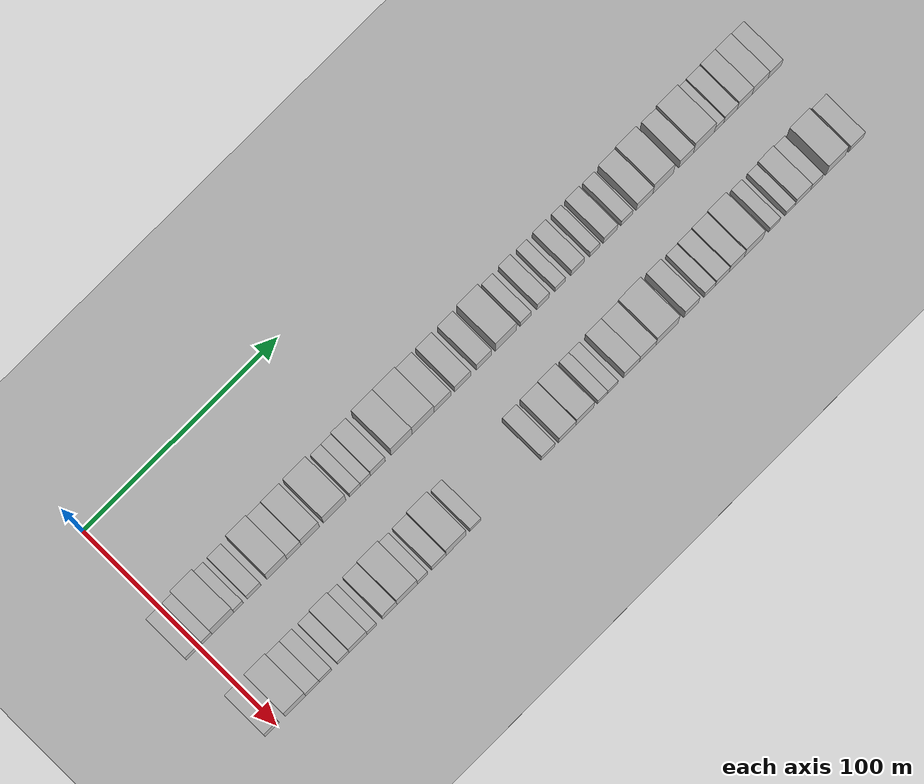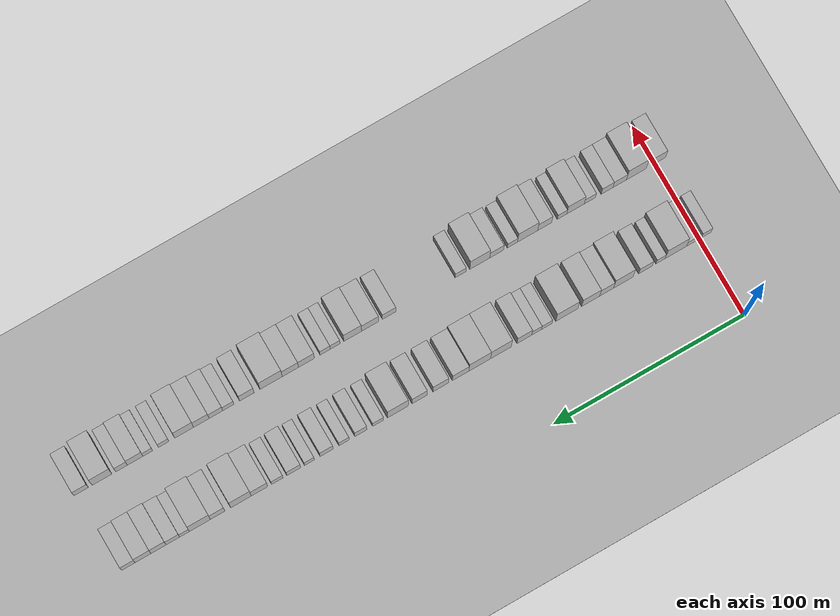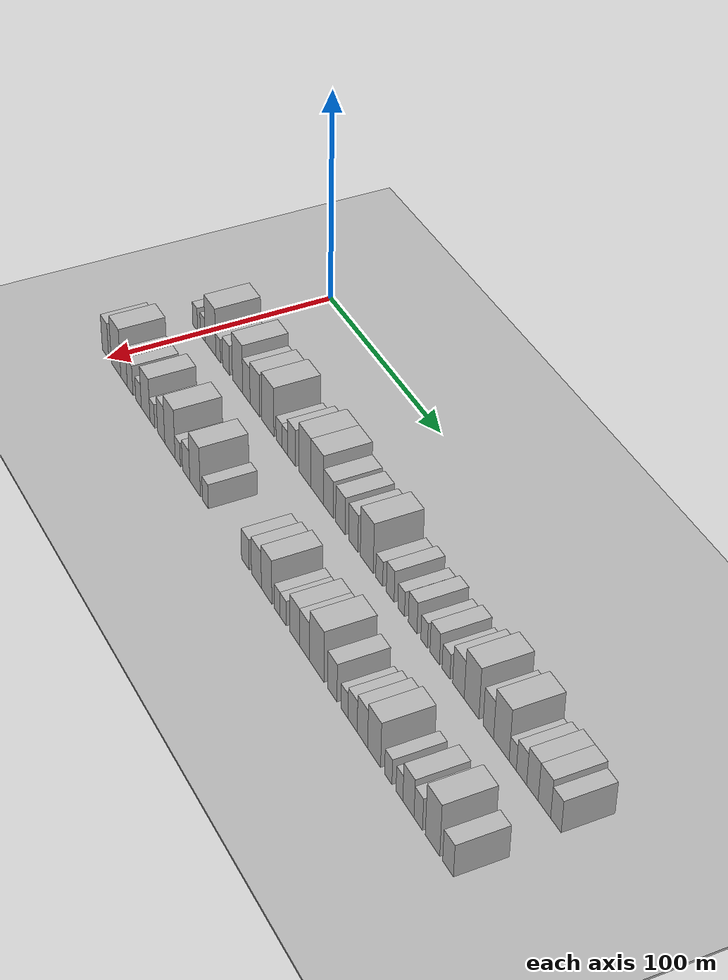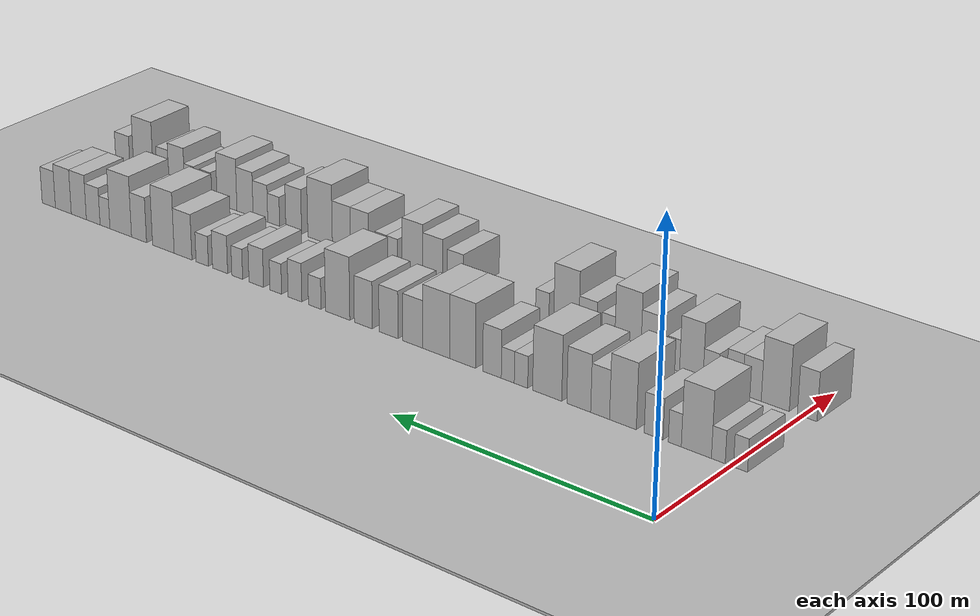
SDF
<sdf version="1.6">
 <world name="default">
  <include><name>ground_plane_1</name><uri>model://HANNAS_ground_plane</uri></include>
  <include>
   <name>ground_plane_2</name>
   <uri>model://HANNAS_ground_plane</uri>
   <pose>100 0 0  0 0 0</pose>
  </include>
  <model name="building_35">
   <static>1</static>
   <pose>50.0000 -3.7508 0 0.000000 0.000000 0.000000</pose>
   <link name="link">
    <pose>0 0 6.00 0 0 0</pose>
    <collision name="collision"><geometry><box><size>20.0000 5.0844 12.0000</size></box></geometry></collision>
    <visual name="visual">
     <cast_shadows>0</cast_shadows>
     <geometry><box><size>20.0000 5.0844 12.0000</size></box></geometry>
     <material>
      <script>
       <uri>model://HANNAS_wall/materials/scripts</uri>
       <uri>model://HANNAS_wall/materials/textures</uri>
       <name>vrc/HANNAS_wall</name>
      </script>
     </material>
    </visual>
   </link>
  </model>
  <model name="building_36">
   <static>1</static>
   <pose>50.0000 4.3104 0 0.000000 0.000000 0.000000</pose>
   <link name="link">
    <pose>0 0 6.00 0 0 0</pose>
    <collision name="collision"><geometry><box><size>20.0000 5.0379 12.0000</size></box></geometry></collision>
    <visual name="visual">
     <cast_shadows>0</cast_shadows>
     <geometry><box><size>20.0000 5.0379 12.0000</size></box></geometry>
     <material>
      <script>
       <uri>model://HANNAS_wall/materials/scripts</uri>
       <uri>model://HANNAS_wall/materials/textures</uri>
       <name>vrc/HANNAS_wall</name>
      </script>
     </material>
    </visual>
   </link>
  </model>
  <model name="building_37">
   <static>1</static>
   <pose>50.0000 12.4003 0 0.000000 0.000000 0.000000</pose>
   <link name="link">
    <pose>0 0 12.00 0 0 0</pose>
    <collision name="collision"><geometry><box><size>20.0000 11.1420 24.0000</size></box></geometry></collision>
    <visual name="visual">
     <cast_shadows>0</cast_shadows>
     <geometry><box><size>20.0000 11.1420 24.0000</size></box></geometry>
     <material>
      <script>
       <uri>model://HANNAS_wall/materials/scripts</uri>
       <uri>model://HANNAS_wall/materials/textures</uri>
       <name>vrc/HANNAS_wall</name>
      </script>
     </material>
    </visual>
   </link>
  </model>
  <model name="building_38">
   <static>1</static>
   <pose>50.0000 20.3887 0 0.000000 0.000000 0.000000</pose>
   <link name="link">
    <pose>0 0 6.00 0 0 0</pose>
    <collision name="collision"><geometry><box><size>20.0000 4.8348 12.0000</size></box></geometry></collision>
    <visual name="visual">
     <cast_shadows>0</cast_shadows>
     <geometry><box><size>20.0000 4.8348 12.0000</size></box></geometry>
     <material>
      <script>
       <uri>model://HANNAS_wall/materials/scripts</uri>
       <uri>model://HANNAS_wall/materials/textures</uri>
       <name>vrc/HANNAS_wall</name>
      </script>
     </material>
    </visual>
   </link>
  </model>
  <model name="building_39">
   <static>1</static>
   <pose>50.0000 28.3555 0 0.000000 0.000000 0.000000</pose>
   <link name="link">
    <pose>0 0 7.50 0 0 0</pose>
    <collision name="collision"><geometry><box><size>20.0000 7.0989 15.0000</size></box></geometry></collision>
    <visual name="visual">
     <cast_shadows>0</cast_shadows>
     <geometry><box><size>20.0000 7.0989 15.0000</size></box></geometry>
     <material>
      <script>
       <uri>model://HANNAS_wall/materials/scripts</uri>
       <uri>model://HANNAS_wall/materials/textures</uri>
       <name>vrc/HANNAS_wall</name>
      </script>
     </material>
    </visual>
   </link>
  </model>
  <model name="building_40">
   <static>1</static>
   <pose>50.0000 40.0406 0 0.000000 0.000000 0.000000</pose>
   <link name="link">
    <pose>0 0 12.00 0 0 0</pose>
    <collision name="collision"><geometry><box><size>20.0000 10.2713 24.0000</size></box></geometry></collision>
    <visual name="visual">
     <cast_shadows>0</cast_shadows>
     <geometry><box><size>20.0000 10.2713 24.0000</size></box></geometry>
     <material>
      <script>
       <uri>model://HANNAS_wall/materials/scripts</uri>
       <uri>model://HANNAS_wall/materials/textures</uri>
       <name>vrc/HANNAS_wall</name>
      </script>
     </material>
    </visual>
   </link>
  </model>
  <model name="building_41">
   <static>1</static>
   <pose>50.0000 48.8296 0 0.000000 0.000000 0.000000</pose>
   <link name="link">
    <pose>0 0 9.00 0 0 0</pose>
    <collision name="collision"><geometry><box><size>20.0000 7.3065 18.0000</size></box></geometry></collision>
    <visual name="visual">
     <cast_shadows>0</cast_shadows>
     <geometry><box><size>20.0000 7.3065 18.0000</size></box></geometry>
     <material>
      <script>
       <uri>model://HANNAS_wall/materials/scripts</uri>
       <uri>model://HANNAS_wall/materials/textures</uri>
       <name>vrc/HANNAS_wall</name>
      </script>
     </material>
    </visual>
   </link>
  </model>
  <model name="building_42">
   <static>1</static>
   <pose>50.0000 57.1725 0 0.000000 0.000000 0.000000</pose>
   <link name="link">
    <pose>0 0 10.50 0 0 0</pose>
    <collision name="collision"><geometry><box><size>20.0000 9.3794 21.0000</size></box></geometry></collision>
    <visual name="visual">
     <cast_shadows>0</cast_shadows>
     <geometry><box><size>20.0000 9.3794 21.0000</size></box></geometry>
     <material>
      <script>
       <uri>model://HANNAS_wall/materials/scripts</uri>
       <uri>model://HANNAS_wall/materials/textures</uri>
       <name>vrc/HANNAS_wall</name>
      </script>
     </material>
    </visual>
   </link>
  </model>
  <model name="building_43">
   <static>1</static>
   <pose>50.0000 69.6522 0 0.000000 0.000000 0.000000</pose>
   <link name="link">
    <pose>0 0 12.00 0 0 0</pose>
    <collision name="collision"><geometry><box><size>20.0000 11.5799 24.0000</size></box></geometry></collision>
    <visual name="visual">
     <cast_shadows>0</cast_shadows>
     <geometry><box><size>20.0000 11.5799 24.0000</size></box></geometry>
     <material>
      <script>
       <uri>model://HANNAS_wall/materials/scripts</uri>
       <uri>model://HANNAS_wall/materials/textures</uri>
       <name>vrc/HANNAS_wall</name>
      </script>
     </material>
    </visual>
   </link>
  </model>
  <model name="building_44">
   <static>1</static>
   <pose>50.0000 80.1559 0 0.000000 0.000000 0.000000</pose>
   <link name="link">
    <pose>0 0 6.00 0 0 0</pose>
    <collision name="collision"><geometry><box><size>20.0000 5.4277 12.0000</size></box></geometry></collision>
    <visual name="visual">
     <cast_shadows>0</cast_shadows>
     <geometry><box><size>20.0000 5.4277 12.0000</size></box></geometry>
     <material>
      <script>
       <uri>model://HANNAS_wall/materials/scripts</uri>
       <uri>model://HANNAS_wall/materials/textures</uri>
       <name>vrc/HANNAS_wall</name>
      </script>
     </material>
    </visual>
   </link>
  </model>
  <model name="building_45">
   <static>1</static>
   <pose>50.0000 85.5039 0 0.000000 0.000000 0.000000</pose>
   <link name="link">
    <pose>0 0 6.00 0 0 0</pose>
    <collision name="collision"><geometry><box><size>20.0000 5.2683 12.0000</size></box></geometry></collision>
    <visual name="visual">
     <cast_shadows>0</cast_shadows>
     <geometry><box><size>20.0000 5.2683 12.0000</size></box></geometry>
     <material>
      <script>
       <uri>model://HANNAS_wall/materials/scripts</uri>
       <uri>model://HANNAS_wall/materials/textures</uri>
       <name>vrc/HANNAS_wall</name>
      </script>
     </material>
    </visual>
   </link>
  </model>
  <model name="building_46">
   <static>1</static>
   <pose>50.0000 91.9332 0 0.000000 0.000000 0.000000</pose>
   <link name="link">
    <pose>0 0 9.00 0 0 0</pose>
    <collision name="collision"><geometry><box><size>20.0000 7.5904 18.0000</size></box></geometry></collision>
    <visual name="visual">
     <cast_shadows>0</cast_shadows>
     <geometry><box><size>20.0000 7.5904 18.0000</size></box></geometry>
     <material>
      <script>
       <uri>model://HANNAS_wall/materials/scripts</uri>
       <uri>model://HANNAS_wall/materials/textures</uri>
       <name>vrc/HANNAS_wall</name>
      </script>
     </material>
    </visual>
   </link>
  </model>
  <model name="building_47">
   <static>1</static>
   <pose>50.0000 104.1379 0 0.000000 0.000000 0.000000</pose>
   <link name="link">
    <pose>0 0 12.00 0 0 0</pose>
    <collision name="collision"><geometry><box><size>20.0000 10.8189 24.0000</size></box></geometry></collision>
    <visual name="visual">
     <cast_shadows>0</cast_shadows>
     <geometry><box><size>20.0000 10.8189 24.0000</size></box></geometry>
     <material>
      <script>
       <uri>model://HANNAS_wall/materials/scripts</uri>
       <uri>model://HANNAS_wall/materials/textures</uri>
       <name>vrc/HANNAS_wall</name>
      </script>
     </material>
    </visual>
   </link>
  </model>
  <model name="building_48">
   <static>1</static>
   <pose>50.0000 115.2195 0 0.000000 0.000000 0.000000</pose>
   <link name="link">
    <pose>0 0 12.00 0 0 0</pose>
    <collision name="collision"><geometry><box><size>20.0000 11.3442 24.0000</size></box></geometry></collision>
    <visual name="visual">
     <cast_shadows>0</cast_shadows>
     <geometry><box><size>20.0000 11.3442 24.0000</size></box></geometry>
     <material>
      <script>
       <uri>model://HANNAS_wall/materials/scripts</uri>
       <uri>model://HANNAS_wall/materials/textures</uri>
       <name>vrc/HANNAS_wall</name>
      </script>
     </material>
    </visual>
   </link>
  </model>
  <model name="building_49">
   <static>1</static>
   <pose>50.0000 125.1964 0 0.000000 0.000000 0.000000</pose>
   <link name="link">
    <pose>0 0 9.00 0 0 0</pose>
    <collision name="collision"><geometry><box><size>20.0000 8.6096 18.0000</size></box></geometry></collision>
    <visual name="visual">
     <cast_shadows>0</cast_shadows>
     <geometry><box><size>20.0000 8.6096 18.0000</size></box></geometry>
     <material>
      <script>
       <uri>model://HANNAS_wall/materials/scripts</uri>
       <uri>model://HANNAS_wall/materials/textures</uri>
       <name>vrc/HANNAS_wall</name>
      </script>
     </material>
    </visual>
   </link>
  </model>
  <model name="building_50">
   <static>1</static>
   <pose>50.0000 135.5839 0 0.000000 0.000000 0.000000</pose>
   <link name="link">
    <pose>0 0 9.00 0 0 0</pose>
    <collision name="collision"><geometry><box><size>20.0000 8.1655 18.0000</size></box></geometry></collision>
    <visual name="visual">
     <cast_shadows>0</cast_shadows>
     <geometry><box><size>20.0000 8.1655 18.0000</size></box></geometry>
     <material>
      <script>
       <uri>model://HANNAS_wall/materials/scripts</uri>
       <uri>model://HANNAS_wall/materials/textures</uri>
       <name>vrc/HANNAS_wall</name>
      </script>
     </material>
    </visual>
   </link>
  </model>
  <model name="building_51">
   <static>1</static>
   <pose>50.0000 146.5986 0 0.000000 0.000000 0.000000</pose>
   <link name="link">
    <pose>0 0 9.00 0 0 0</pose>
    <collision name="collision"><geometry><box><size>20.0000 7.8638 18.0000</size></box></geometry></collision>
    <visual name="visual">
     <cast_shadows>0</cast_shadows>
     <geometry><box><size>20.0000 7.8638 18.0000</size></box></geometry>
     <material>
      <script>
       <uri>model://HANNAS_wall/materials/scripts</uri>
       <uri>model://HANNAS_wall/materials/textures</uri>
       <name>vrc/HANNAS_wall</name>
      </script>
     </material>
    </visual>
   </link>
  </model>
  <model name="building_52">
   <static>1</static>
   <pose>50.0000 157.9453 0 0.000000 0.000000 0.000000</pose>
   <link name="link">
    <pose>0 0 12.00 0 0 0</pose>
    <collision name="collision"><geometry><box><size>20.0000 10.8296 24.0000</size></box></geometry></collision>
    <visual name="visual">
     <cast_shadows>0</cast_shadows>
     <geometry><box><size>20.0000 10.8296 24.0000</size></box></geometry>
     <material>
      <script>
       <uri>model://HANNAS_wall/materials/scripts</uri>
       <uri>model://HANNAS_wall/materials/textures</uri>
       <name>vrc/HANNAS_wall</name>
      </script>
     </material>
    </visual>
   </link>
  </model>
  <model name="building_53">
   <static>1</static>
   <pose>50.0000 168.1985 0 0.000000 0.000000 0.000000</pose>
   <link name="link">
    <pose>0 0 6.00 0 0 0</pose>
    <collision name="collision"><geometry><box><size>20.0000 5.6769 12.0000</size></box></geometry></collision>
    <visual name="visual">
     <cast_shadows>0</cast_shadows>
     <geometry><box><size>20.0000 5.6769 12.0000</size></box></geometry>
     <material>
      <script>
       <uri>model://HANNAS_wall/materials/scripts</uri>
       <uri>model://HANNAS_wall/materials/textures</uri>
       <name>vrc/HANNAS_wall</name>
      </script>
     </material>
    </visual>
   </link>
  </model>
  <model name="building_54">
   <static>1</static>
   <pose>50.0000 177.1608 0 0.000000 0.000000 0.000000</pose>
   <link name="link">
    <pose>0 0 7.50 0 0 0</pose>
    <collision name="collision"><geometry><box><size>20.0000 6.2477 15.0000</size></box></geometry></collision>
    <visual name="visual">
     <cast_shadows>0</cast_shadows>
     <geometry><box><size>20.0000 6.2477 15.0000</size></box></geometry>
     <material>
      <script>
       <uri>model://HANNAS_wall/materials/scripts</uri>
       <uri>model://HANNAS_wall/materials/textures</uri>
       <name>vrc/HANNAS_wall</name>
      </script>
     </material>
    </visual>
   </link>
  </model>
  <model name="building_55">
   <static>1</static>
   <pose>50.0000 185.9469 0 0.000000 0.000000 0.000000</pose>
   <link name="link">
    <pose>0 0 6.00 0 0 0</pose>
    <collision name="collision"><geometry><box><size>20.0000 5.3243 12.0000</size></box></geometry></collision>
    <visual name="visual">
     <cast_shadows>0</cast_shadows>
     <geometry><box><size>20.0000 5.3243 12.0000</size></box></geometry>
     <material>
      <script>
       <uri>model://HANNAS_wall/materials/scripts</uri>
       <uri>model://HANNAS_wall/materials/textures</uri>
       <name>vrc/HANNAS_wall</name>
      </script>
     </material>
    </visual>
   </link>
  </model>
  <model name="building_56">
   <static>1</static>
   <pose>50.0000 194.9970 0 0.000000 0.000000 0.000000</pose>
   <link name="link">
    <pose>0 0 7.50 0 0 0</pose>
    <collision name="collision"><geometry><box><size>20.0000 6.7760 15.0000</size></box></geometry></collision>
    <visual name="visual">
     <cast_shadows>0</cast_shadows>
     <geometry><box><size>20.0000 6.7760 15.0000</size></box></geometry>
     <material>
      <script>
       <uri>model://HANNAS_wall/materials/scripts</uri>
       <uri>model://HANNAS_wall/materials/textures</uri>
       <name>vrc/HANNAS_wall</name>
      </script>
     </material>
    </visual>
   </link>
  </model>
  <model name="building_57">
   <static>1</static>
   <pose>50.0000 203.9199 0 0.000000 0.000000 0.000000</pose>
   <link name="link">
    <pose>0 0 6.00 0 0 0</pose>
    <collision name="collision"><geometry><box><size>20.0000 5.0697 12.0000</size></box></geometry></collision>
    <visual name="visual">
     <cast_shadows>0</cast_shadows>
     <geometry><box><size>20.0000 5.0697 12.0000</size></box></geometry>
     <material>
      <script>
       <uri>model://HANNAS_wall/materials/scripts</uri>
       <uri>model://HANNAS_wall/materials/textures</uri>
       <name>vrc/HANNAS_wall</name>
      </script>
     </material>
    </visual>
   </link>
  </model>
  <model name="building_58">
   <static>1</static>
   <pose>50.0000 212.0440 0 0.000000 0.000000 0.000000</pose>
   <link name="link">
    <pose>0 0 7.50 0 0 0</pose>
    <collision name="collision"><geometry><box><size>20.0000 7.1785 15.0000</size></box></geometry></collision>
    <visual name="visual">
     <cast_shadows>0</cast_shadows>
     <geometry><box><size>20.0000 7.1785 15.0000</size></box></geometry>
     <material>
      <script>
       <uri>model://HANNAS_wall/materials/scripts</uri>
       <uri>model://HANNAS_wall/materials/textures</uri>
       <name>vrc/HANNAS_wall</name>
      </script>
     </material>
    </visual>
   </link>
  </model>
  <model name="building_59">
   <static>1</static>
   <pose>50.0000 220.5963 0 0.000000 0.000000 0.000000</pose>
   <link name="link">
    <pose>0 0 6.00 0 0 0</pose>
    <collision name="collision"><geometry><box><size>20.0000 5.9261 12.0000</size></box></geometry></collision>
    <visual name="visual">
     <cast_shadows>0</cast_shadows>
     <geometry><box><size>20.0000 5.9261 12.0000</size></box></geometry>
     <material>
      <script>
       <uri>model://HANNAS_wall/materials/scripts</uri>
       <uri>model://HANNAS_wall/materials/textures</uri>
       <name>vrc/HANNAS_wall</name>
      </script>
     </material>
    </visual>
   </link>
  </model>
  <model name="building_60">
   <static>1</static>
   <pose>50.0000 229.8518 0 0.000000 0.000000 0.000000</pose>
   <link name="link">
    <pose>0 0 9.00 0 0 0</pose>
    <collision name="collision"><geometry><box><size>20.0000 8.5849 18.0000</size></box></geometry></collision>
    <visual name="visual">
     <cast_shadows>0</cast_shadows>
     <geometry><box><size>20.0000 8.5849 18.0000</size></box></geometry>
     <material>
      <script>
       <uri>model://HANNAS_wall/materials/scripts</uri>
       <uri>model://HANNAS_wall/materials/textures</uri>
       <name>vrc/HANNAS_wall</name>
      </script>
     </material>
    </visual>
   </link>
  </model>
  <model name="building_61">
   <static>1</static>
   <pose>50.0000 239.4546 0 0.000000 0.000000 0.000000</pose>
   <link name="link">
    <pose>0 0 12.00 0 0 0</pose>
    <collision name="collision"><geometry><box><size>20.0000 10.6207 24.0000</size></box></geometry></collision>
    <visual name="visual">
     <cast_shadows>0</cast_shadows>
     <geometry><box><size>20.0000 10.6207 24.0000</size></box></geometry>
     <material>
      <script>
       <uri>model://HANNAS_wall/materials/scripts</uri>
       <uri>model://HANNAS_wall/materials/textures</uri>
       <name>vrc/HANNAS_wall</name>
      </script>
     </material>
    </visual>
   </link>
  </model>
  <model name="building_62">
   <static>1</static>
   <pose>50.0000 251.4985 0 0.000000 0.000000 0.000000</pose>
   <link name="link">
    <pose>0 0 9.00 0 0 0</pose>
    <collision name="collision"><geometry><box><size>20.0000 7.4671 18.0000</size></box></geometry></collision>
    <visual name="visual">
     <cast_shadows>0</cast_shadows>
     <geometry><box><size>20.0000 7.4671 18.0000</size></box></geometry>
     <material>
      <script>
       <uri>model://HANNAS_wall/materials/scripts</uri>
       <uri>model://HANNAS_wall/materials/textures</uri>
       <name>vrc/HANNAS_wall</name>
      </script>
     </material>
    </visual>
   </link>
  </model>
  <model name="building_63">
   <static>1</static>
   <pose>50.0000 260.6727 0 0.000000 0.000000 0.000000</pose>
   <link name="link">
    <pose>0 0 12.00 0 0 0</pose>
    <collision name="collision"><geometry><box><size>20.0000 10.8813 24.0000</size></box></geometry></collision>
    <visual name="visual">
     <cast_shadows>0</cast_shadows>
     <geometry><box><size>20.0000 10.8813 24.0000</size></box></geometry>
     <material>
      <script>
       <uri>model://HANNAS_wall/materials/scripts</uri>
       <uri>model://HANNAS_wall/materials/textures</uri>
       <name>vrc/HANNAS_wall</name>
      </script>
     </material>
    </visual>
   </link>
  </model>
  <model name="building_64">
   <static>1</static>
   <pose>50.0000 268.6062 0 0.000000 0.000000 0.000000</pose>
   <link name="link">
    <pose>0 0 6.00 0 0 0</pose>
    <collision name="collision"><geometry><box><size>20.0000 4.9857 12.0000</size></box></geometry></collision>
    <visual name="visual">
     <cast_shadows>0</cast_shadows>
     <geometry><box><size>20.0000 4.9857 12.0000</size></box></geometry>
     <material>
      <script>
       <uri>model://HANNAS_wall/materials/scripts</uri>
       <uri>model://HANNAS_wall/materials/textures</uri>
       <name>vrc/HANNAS_wall</name>
      </script>
     </material>
    </visual>
   </link>
  </model>
  <model name="building_65">
   <static>1</static>
   <pose>50.0000 274.6157 0 0.000000 0.000000 0.000000</pose>
   <link name="link">
    <pose>0 0 7.50 0 0 0</pose>
    <collision name="collision"><geometry><box><size>20.0000 7.0331 15.0000</size></box></geometry></collision>
    <visual name="visual">
     <cast_shadows>0</cast_shadows>
     <geometry><box><size>20.0000 7.0331 15.0000</size></box></geometry>
     <material>
      <script>
       <uri>model://HANNAS_wall/materials/scripts</uri>
       <uri>model://HANNAS_wall/materials/textures</uri>
       <name>vrc/HANNAS_wall</name>
      </script>
     </material>
    </visual>
   </link>
  </model>
  <model name="building_66">
   <static>1</static>
   <pose>50.0000 282.0157 0 0.000000 0.000000 0.000000</pose>
   <link name="link">
    <pose>0 0 9.00 0 0 0</pose>
    <collision name="collision"><geometry><box><size>20.0000 7.7668 18.0000</size></box></geometry></collision>
    <visual name="visual">
     <cast_shadows>0</cast_shadows>
     <geometry><box><size>20.0000 7.7668 18.0000</size></box></geometry>
     <material>
      <script>
       <uri>model://HANNAS_wall/materials/scripts</uri>
       <uri>model://HANNAS_wall/materials/textures</uri>
       <name>vrc/HANNAS_wall</name>
      </script>
     </material>
    </visual>
   </link>
  </model>
  <model name="building_67">
   <static>1</static>
   <pose>50.0000 290.0284 0 0.000000 0.000000 0.000000</pose>
   <link name="link">
    <pose>0 0 9.00 0 0 0</pose>
    <collision name="collision"><geometry><box><size>20.0000 8.2585 18.0000</size></box></geometry></collision>
    <visual name="visual">
     <cast_shadows>0</cast_shadows>
     <geometry><box><size>20.0000 8.2585 18.0000</size></box></geometry>
     <material>
      <script>
       <uri>model://HANNAS_wall/materials/scripts</uri>
       <uri>model://HANNAS_wall/materials/textures</uri>
       <name>vrc/HANNAS_wall</name>
      </script>
     </material>
    </visual>
   </link>
  </model>
  <model name="building_68">
   <static>1</static>
   <pose>50.0000 297.6242 0 0.000000 0.000000 0.000000</pose>
   <link name="link">
    <pose>0 0 7.50 0 0 0</pose>
    <collision name="collision"><geometry><box><size>20.0000 6.9330 15.0000</size></box></geometry></collision>
    <visual name="visual">
     <cast_shadows>0</cast_shadows>
     <geometry><box><size>20.0000 6.9330 15.0000</size></box></geometry>
     <material>
      <script>
       <uri>model://HANNAS_wall/materials/scripts</uri>
       <uri>model://HANNAS_wall/materials/textures</uri>
       <name>vrc/HANNAS_wall</name>
      </script>
     </material>
    </visual>
   </link>
  </model>
  <model name="building_102">
   <static>1</static>
   <pose>90.0000 -2.1830 0 0.000000 0.000000 0.000000</pose>
   <link name="link">
    <pose>0 0 9.00 0 0 0</pose>
    <collision name="collision"><geometry><box><size>20.0000 7.2203 18.0000</size></box></geometry></collision>
    <visual name="visual">
     <cast_shadows>0</cast_shadows>
     <geometry><box><size>20.0000 7.2203 18.0000</size></box></geometry>
     <material>
      <script>
       <uri>model://HANNAS_wall/materials/scripts</uri>
       <uri>model://HANNAS_wall/materials/textures</uri>
       <name>vrc/HANNAS_wall</name>
      </script>
     </material>
    </visual>
   </link>
  </model>
  <model name="building_103">
   <static>1</static>
   <pose>90.0000 9.6742 0 0.000000 0.000000 0.000000</pose>
   <link name="link">
    <pose>0 0 12.00 0 0 0</pose>
    <collision name="collision"><geometry><box><size>20.0000 10.4942 24.0000</size></box></geometry></collision>
    <visual name="visual">
     <cast_shadows>0</cast_shadows>
     <geometry><box><size>20.0000 10.4942 24.0000</size></box></geometry>
     <material>
      <script>
       <uri>model://HANNAS_wall/materials/scripts</uri>
       <uri>model://HANNAS_wall/materials/textures</uri>
       <name>vrc/HANNAS_wall</name>
      </script>
     </material>
    </visual>
   </link>
  </model>
  <model name="building_104">
   <static>1</static>
   <pose>90.0000 18.4553 0 0.000000 0.000000 0.000000</pose>
   <link name="link">
    <pose>0 0 7.50 0 0 0</pose>
    <collision name="collision"><geometry><box><size>20.0000 7.0680 15.0000</size></box></geometry></collision>
    <visual name="visual">
     <cast_shadows>0</cast_shadows>
     <geometry><box><size>20.0000 7.0680 15.0000</size></box></geometry>
     <material>
      <script>
       <uri>model://HANNAS_wall/materials/scripts</uri>
       <uri>model://HANNAS_wall/materials/textures</uri>
       <name>vrc/HANNAS_wall</name>
      </script>
     </material>
    </visual>
   </link>
  </model>
  <model name="building_105">
   <static>1</static>
   <pose>90.0000 25.0851 0 0.000000 0.000000 0.000000</pose>
   <link name="link">
    <pose>0 0 7.50 0 0 0</pose>
    <collision name="collision"><geometry><box><size>20.0000 6.1916 15.0000</size></box></geometry></collision>
    <visual name="visual">
     <cast_shadows>0</cast_shadows>
     <geometry><box><size>20.0000 6.1916 15.0000</size></box></geometry>
     <material>
      <script>
       <uri>model://HANNAS_wall/materials/scripts</uri>
       <uri>model://HANNAS_wall/materials/textures</uri>
       <name>vrc/HANNAS_wall</name>
      </script>
     </material>
    </visual>
   </link>
  </model>
  <model name="building_106">
   <static>1</static>
   <pose>90.0000 34.1419 0 0.000000 0.000000 0.000000</pose>
   <link name="link">
    <pose>0 0 6.00 0 0 0</pose>
    <collision name="collision"><geometry><box><size>20.0000 5.9220 12.0000</size></box></geometry></collision>
    <visual name="visual">
     <cast_shadows>0</cast_shadows>
     <geometry><box><size>20.0000 5.9220 12.0000</size></box></geometry>
     <material>
      <script>
       <uri>model://HANNAS_wall/materials/scripts</uri>
       <uri>model://HANNAS_wall/materials/textures</uri>
       <name>vrc/HANNAS_wall</name>
      </script>
     </material>
    </visual>
   </link>
  </model>
  <model name="building_107">
   <static>1</static>
   <pose>90.0000 41.6938 0 0.000000 0.000000 0.000000</pose>
   <link name="link">
    <pose>0 0 10.50 0 0 0</pose>
    <collision name="collision"><geometry><box><size>20.0000 9.1819 21.0000</size></box></geometry></collision>
    <visual name="visual">
     <cast_shadows>0</cast_shadows>
     <geometry><box><size>20.0000 9.1819 21.0000</size></box></geometry>
     <material>
      <script>
       <uri>model://HANNAS_wall/materials/scripts</uri>
       <uri>model://HANNAS_wall/materials/textures</uri>
       <name>vrc/HANNAS_wall</name>
      </script>
     </material>
    </visual>
   </link>
  </model>
  <model name="building_108">
   <static>1</static>
   <pose>90.0000 48.7648 0 0.000000 0.000000 0.000000</pose>
   <link name="link">
    <pose>0 0 6.00 0 0 0</pose>
    <collision name="collision"><geometry><box><size>20.0000 4.9601 12.0000</size></box></geometry></collision>
    <visual name="visual">
     <cast_shadows>0</cast_shadows>
     <geometry><box><size>20.0000 4.9601 12.0000</size></box></geometry>
     <material>
      <script>
       <uri>model://HANNAS_wall/materials/scripts</uri>
       <uri>model://HANNAS_wall/materials/textures</uri>
       <name>vrc/HANNAS_wall</name>
      </script>
     </material>
    </visual>
   </link>
  </model>
  <model name="building_109">
   <static>1</static>
   <pose>90.0000 57.9348 0 0.000000 0.000000 0.000000</pose>
   <link name="link">
    <pose>0 0 9.00 0 0 0</pose>
    <collision name="collision"><geometry><box><size>20.0000 7.3800 18.0000</size></box></geometry></collision>
    <visual name="visual">
     <cast_shadows>0</cast_shadows>
     <geometry><box><size>20.0000 7.3800 18.0000</size></box></geometry>
     <material>
      <script>
       <uri>model://HANNAS_wall/materials/scripts</uri>
       <uri>model://HANNAS_wall/materials/textures</uri>
       <name>vrc/HANNAS_wall</name>
      </script>
     </material>
    </visual>
   </link>
  </model>
  <model name="building_110">
   <static>1</static>
   <pose>90.0000 66.8921 0 0.000000 0.000000 0.000000</pose>
   <link name="link">
    <pose>0 0 12.00 0 0 0</pose>
    <collision name="collision"><geometry><box><size>20.0000 10.5347 24.0000</size></box></geometry></collision>
    <visual name="visual">
     <cast_shadows>0</cast_shadows>
     <geometry><box><size>20.0000 10.5347 24.0000</size></box></geometry>
     <material>
      <script>
       <uri>model://HANNAS_wall/materials/scripts</uri>
       <uri>model://HANNAS_wall/materials/textures</uri>
       <name>vrc/HANNAS_wall</name>
      </script>
     </material>
    </visual>
   </link>
  </model>
  <model name="building_111">
   <static>1</static>
   <pose>90.0000 74.8232 0 0.000000 0.000000 0.000000</pose>
   <link name="link">
    <pose>0 0 6.00 0 0 0</pose>
    <collision name="collision"><geometry><box><size>20.0000 5.3274 12.0000</size></box></geometry></collision>
    <visual name="visual">
     <cast_shadows>0</cast_shadows>
     <geometry><box><size>20.0000 5.3274 12.0000</size></box></geometry>
     <material>
      <script>
       <uri>model://HANNAS_wall/materials/scripts</uri>
       <uri>model://HANNAS_wall/materials/textures</uri>
       <name>vrc/HANNAS_wall</name>
      </script>
     </material>
    </visual>
   </link>
  </model>
  <model name="building_112">
   <static>1</static>
   <pose>90.0000 83.1417 0 0.000000 0.000000 0.000000</pose>
   <link name="link">
    <pose>0 0 7.50 0 0 0</pose>
    <collision name="collision"><geometry><box><size>20.0000 7.3096 15.0000</size></box></geometry></collision>
    <visual name="visual">
     <cast_shadows>0</cast_shadows>
     <geometry><box><size>20.0000 7.3096 15.0000</size></box></geometry>
     <material>
      <script>
       <uri>model://HANNAS_wall/materials/scripts</uri>
       <uri>model://HANNAS_wall/materials/textures</uri>
       <name>vrc/HANNAS_wall</name>
      </script>
     </material>
    </visual>
   </link>
  </model>
  <model name="building_113">
   <static>1</static>
   <pose>90.0000 91.9990 0 0.000000 0.000000 0.000000</pose>
   <link name="link">
    <pose>0 0 12.00 0 0 0</pose>
    <collision name="collision"><geometry><box><size>20.0000 10.4049 24.0000</size></box></geometry></collision>
    <visual name="visual">
     <cast_shadows>0</cast_shadows>
     <geometry><box><size>20.0000 10.4049 24.0000</size></box></geometry>
     <material>
      <script>
       <uri>model://HANNAS_wall/materials/scripts</uri>
       <uri>model://HANNAS_wall/materials/textures</uri>
       <name>vrc/HANNAS_wall</name>
      </script>
     </material>
    </visual>
   </link>
  </model>
  <model name="building_114">
   <static>1</static>
   <pose>90.0000 102.0358 0 0.000000 0.000000 0.000000</pose>
   <link name="link">
    <pose>0 0 6.00 0 0 0</pose>
    <collision name="collision"><geometry><box><size>20.0000 5.6688 12.0000</size></box></geometry></collision>
    <visual name="visual">
     <cast_shadows>0</cast_shadows>
     <geometry><box><size>20.0000 5.6688 12.0000</size></box></geometry>
     <material>
      <script>
       <uri>model://HANNAS_wall/materials/scripts</uri>
       <uri>model://HANNAS_wall/materials/textures</uri>
       <name>vrc/HANNAS_wall</name>
      </script>
     </material>
    </visual>
   </link>
  </model>
  <model name="building_115">
   <static>1</static>
   <pose>90.0000 139.3929 0 0.000000 0.000000 0.000000</pose>
   <link name="link">
    <pose>0 0 7.50 0 0 0</pose>
    <collision name="collision"><geometry><box><size>20.0000 7.0152 15.0000</size></box></geometry></collision>
    <visual name="visual">
     <cast_shadows>0</cast_shadows>
     <geometry><box><size>20.0000 7.0152 15.0000</size></box></geometry>
     <material>
      <script>
       <uri>model://HANNAS_wall/materials/scripts</uri>
       <uri>model://HANNAS_wall/materials/textures</uri>
       <name>vrc/HANNAS_wall</name>
      </script>
     </material>
    </visual>
   </link>
  </model>
  <model name="building_116">
   <static>1</static>
   <pose>90.0000 149.3478 0 0.000000 0.000000 0.000000</pose>
   <link name="link">
    <pose>0 0 9.00 0 0 0</pose>
    <collision name="collision"><geometry><box><size>20.0000 8.8946 18.0000</size></box></geometry></collision>
    <visual name="visual">
     <cast_shadows>0</cast_shadows>
     <geometry><box><size>20.0000 8.8946 18.0000</size></box></geometry>
     <material>
      <script>
       <uri>model://HANNAS_wall/materials/scripts</uri>
       <uri>model://HANNAS_wall/materials/textures</uri>
       <name>vrc/HANNAS_wall</name>
      </script>
     </material>
    </visual>
   </link>
  </model>
  <model name="building_117">
   <static>1</static>
   <pose>90.0000 158.4249 0 0.000000 0.000000 0.000000</pose>
   <link name="link">
    <pose>0 0 10.50 0 0 0</pose>
    <collision name="collision"><geometry><box><size>20.0000 9.2597 21.0000</size></box></geometry></collision>
    <visual name="visual">
     <cast_shadows>0</cast_shadows>
     <geometry><box><size>20.0000 9.2597 21.0000</size></box></geometry>
     <material>
      <script>
       <uri>model://HANNAS_wall/materials/scripts</uri>
       <uri>model://HANNAS_wall/materials/textures</uri>
       <name>vrc/HANNAS_wall</name>
      </script>
     </material>
    </visual>
   </link>
  </model>
  <model name="building_118">
   <static>1</static>
   <pose>90.0000 167.5894 0 0.000000 0.000000 0.000000</pose>
   <link name="link">
    <pose>0 0 6.00 0 0 0</pose>
    <collision name="collision"><geometry><box><size>20.0000 5.0693 12.0000</size></box></geometry></collision>
    <visual name="visual">
     <cast_shadows>0</cast_shadows>
     <geometry><box><size>20.0000 5.0693 12.0000</size></box></geometry>
     <material>
      <script>
       <uri>model://HANNAS_wall/materials/scripts</uri>
       <uri>model://HANNAS_wall/materials/textures</uri>
       <name>vrc/HANNAS_wall</name>
      </script>
     </material>
    </visual>
   </link>
  </model>
  <model name="building_119">
   <static>1</static>
   <pose>90.0000 172.7834 0 0.000000 0.000000 0.000000</pose>
   <link name="link">
    <pose>0 0 6.00 0 0 0</pose>
    <collision name="collision"><geometry><box><size>20.0000 5.3186 12.0000</size></box></geometry></collision>
    <visual name="visual">
     <cast_shadows>0</cast_shadows>
     <geometry><box><size>20.0000 5.3186 12.0000</size></box></geometry>
     <material>
      <script>
       <uri>model://HANNAS_wall/materials/scripts</uri>
       <uri>model://HANNAS_wall/materials/textures</uri>
       <name>vrc/HANNAS_wall</name>
      </script>
     </material>
    </visual>
   </link>
  </model>
  <model name="building_120">
   <static>1</static>
   <pose>90.0000 182.5585 0 0.000000 0.000000 0.000000</pose>
   <link name="link">
    <pose>0 0 9.00 0 0 0</pose>
    <collision name="collision"><geometry><box><size>20.0000 8.2316 18.0000</size></box></geometry></collision>
    <visual name="visual">
     <cast_shadows>0</cast_shadows>
     <geometry><box><size>20.0000 8.2316 18.0000</size></box></geometry>
     <material>
      <script>
       <uri>model://HANNAS_wall/materials/scripts</uri>
       <uri>model://HANNAS_wall/materials/textures</uri>
       <name>vrc/HANNAS_wall</name>
      </script>
     </material>
    </visual>
   </link>
  </model>
  <model name="building_121">
   <static>1</static>
   <pose>90.0000 190.9312 0 0.000000 0.000000 0.000000</pose>
   <link name="link">
    <pose>0 0 9.00 0 0 0</pose>
    <collision name="collision"><geometry><box><size>20.0000 8.5138 18.0000</size></box></geometry></collision>
    <visual name="visual">
     <cast_shadows>0</cast_shadows>
     <geometry><box><size>20.0000 8.5138 18.0000</size></box></geometry>
     <material>
      <script>
       <uri>model://HANNAS_wall/materials/scripts</uri>
       <uri>model://HANNAS_wall/materials/textures</uri>
       <name>vrc/HANNAS_wall</name>
      </script>
     </material>
    </visual>
   </link>
  </model>
  <model name="building_122">
   <static>1</static>
   <pose>90.0000 200.9778 0 0.000000 0.000000 0.000000</pose>
   <link name="link">
    <pose>0 0 12.00 0 0 0</pose>
    <collision name="collision"><geometry><box><size>20.0000 11.5794 24.0000</size></box></geometry></collision>
    <visual name="visual">
     <cast_shadows>0</cast_shadows>
     <geometry><box><size>20.0000 11.5794 24.0000</size></box></geometry>
     <material>
      <script>
       <uri>model://HANNAS_wall/materials/scripts</uri>
       <uri>model://HANNAS_wall/materials/textures</uri>
       <name>vrc/HANNAS_wall</name>
      </script>
     </material>
    </visual>
   </link>
  </model>
  <model name="building_123">
   <static>1</static>
   <pose>90.0000 213.5464 0 0.000000 0.000000 0.000000</pose>
   <link name="link">
    <pose>0 0 9.00 0 0 0</pose>
    <collision name="collision"><geometry><box><size>20.0000 7.5580 18.0000</size></box></geometry></collision>
    <visual name="visual">
     <cast_shadows>0</cast_shadows>
     <geometry><box><size>20.0000 7.5580 18.0000</size></box></geometry>
     <material>
      <script>
       <uri>model://HANNAS_wall/materials/scripts</uri>
       <uri>model://HANNAS_wall/materials/textures</uri>
       <name>vrc/HANNAS_wall</name>
      </script>
     </material>
    </visual>
   </link>
  </model>
  <model name="building_124">
   <static>1</static>
   <pose>90.0000 223.2079 0 0.000000 0.000000 0.000000</pose>
   <link name="link">
    <pose>0 0 6.00 0 0 0</pose>
    <collision name="collision"><geometry><box><size>20.0000 5.7649 12.0000</size></box></geometry></collision>
    <visual name="visual">
     <cast_shadows>0</cast_shadows>
     <geometry><box><size>20.0000 5.7649 12.0000</size></box></geometry>
     <material>
      <script>
       <uri>model://HANNAS_wall/materials/scripts</uri>
       <uri>model://HANNAS_wall/materials/textures</uri>
       <name>vrc/HANNAS_wall</name>
      </script>
     </material>
    </visual>
   </link>
  </model>
  <model name="building_125">
   <static>1</static>
   <pose>90.0000 229.6474 0 0.000000 0.000000 0.000000</pose>
   <link name="link">
    <pose>0 0 7.50 0 0 0</pose>
    <collision name="collision"><geometry><box><size>20.0000 7.1143 15.0000</size></box></geometry></collision>
    <visual name="visual">
     <cast_shadows>0</cast_shadows>
     <geometry><box><size>20.0000 7.1143 15.0000</size></box></geometry>
     <material>
      <script>
       <uri>model://HANNAS_wall/materials/scripts</uri>
       <uri>model://HANNAS_wall/materials/textures</uri>
       <name>vrc/HANNAS_wall</name>
      </script>
     </material>
    </visual>
   </link>
  </model>
  <model name="building_126">
   <static>1</static>
   <pose>90.0000 237.2024 0 0.000000 0.000000 0.000000</pose>
   <link name="link">
    <pose>0 0 9.00 0 0 0</pose>
    <collision name="collision"><geometry><box><size>20.0000 7.9955 18.0000</size></box></geometry></collision>
    <visual name="visual">
     <cast_shadows>0</cast_shadows>
     <geometry><box><size>20.0000 7.9955 18.0000</size></box></geometry>
     <material>
      <script>
       <uri>model://HANNAS_wall/materials/scripts</uri>
       <uri>model://HANNAS_wall/materials/textures</uri>
       <name>vrc/HANNAS_wall</name>
      </script>
     </material>
    </visual>
   </link>
  </model>
  <model name="building_127">
   <static>1</static>
   <pose>90.0000 246.1060 0 0.000000 0.000000 0.000000</pose>
   <link name="link">
    <pose>0 0 10.50 0 0 0</pose>
    <collision name="collision"><geometry><box><size>20.0000 9.8118 21.0000</size></box></geometry></collision>
    <visual name="visual">
     <cast_shadows>0</cast_shadows>
     <geometry><box><size>20.0000 9.8118 21.0000</size></box></geometry>
     <material>
      <script>
       <uri>model://HANNAS_wall/materials/scripts</uri>
       <uri>model://HANNAS_wall/materials/textures</uri>
       <name>vrc/HANNAS_wall</name>
      </script>
     </material>
    </visual>
   </link>
  </model>
  <model name="building_128">
   <static>1</static>
   <pose>90.0000 256.7346 0 0.000000 0.000000 0.000000</pose>
   <link name="link">
    <pose>0 0 6.00 0 0 0</pose>
    <collision name="collision"><geometry><box><size>20.0000 5.4454 12.0000</size></box></geometry></collision>
    <visual name="visual">
     <cast_shadows>0</cast_shadows>
     <geometry><box><size>20.0000 5.4454 12.0000</size></box></geometry>
     <material>
      <script>
       <uri>model://HANNAS_wall/materials/scripts</uri>
       <uri>model://HANNAS_wall/materials/textures</uri>
       <name>vrc/HANNAS_wall</name>
      </script>
     </material>
    </visual>
   </link>
  </model>
  <model name="building_129">
   <static>1</static>
   <pose>90.0000 264.9494 0 0.000000 0.000000 0.000000</pose>
   <link name="link">
    <pose>0 0 6.00 0 0 0</pose>
    <collision name="collision"><geometry><box><size>20.0000 4.9843 12.0000</size></box></geometry></collision>
    <visual name="visual">
     <cast_shadows>0</cast_shadows>
     <geometry><box><size>20.0000 4.9843 12.0000</size></box></geometry>
     <material>
      <script>
       <uri>model://HANNAS_wall/materials/scripts</uri>
       <uri>model://HANNAS_wall/materials/textures</uri>
       <name>vrc/HANNAS_wall</name>
      </script>
     </material>
    </visual>
   </link>
  </model>
  <model name="building_130">
   <static>1</static>
   <pose>90.0000 271.4814 0 0.000000 0.000000 0.000000</pose>
   <link name="link">
    <pose>0 0 9.00 0 0 0</pose>
    <collision name="collision"><geometry><box><size>20.0000 8.0797 18.0000</size></box></geometry></collision>
    <visual name="visual">
     <cast_shadows>0</cast_shadows>
     <geometry><box><size>20.0000 8.0797 18.0000</size></box></geometry>
     <material>
      <script>
       <uri>model://HANNAS_wall/materials/scripts</uri>
       <uri>model://HANNAS_wall/materials/textures</uri>
       <name>vrc/HANNAS_wall</name>
      </script>
     </material>
    </visual>
   </link>
  </model>
  <model name="building_131">
   <static>1</static>
   <pose>90.0000 278.5265 0 0.000000 0.000000 0.000000</pose>
   <link name="link">
    <pose>0 0 7.50 0 0 0</pose>
    <collision name="collision"><geometry><box><size>20.0000 6.0103 15.0000</size></box></geometry></collision>
    <visual name="visual">
     <cast_shadows>0</cast_shadows>
     <geometry><box><size>20.0000 6.0103 15.0000</size></box></geometry>
     <material>
      <script>
       <uri>model://HANNAS_wall/materials/scripts</uri>
       <uri>model://HANNAS_wall/materials/textures</uri>
       <name>vrc/HANNAS_wall</name>
      </script>
     </material>
    </visual>
   </link>
  </model>
  <model name="building_132">
   <static>1</static>
   <pose>90.0000 288.6212 0 0.000000 0.000000 0.000000</pose>
   <link name="link">
    <pose>0 0 12.00 0 0 0</pose>
    <collision name="collision"><geometry><box><size>20.0000 10.1791 24.0000</size></box></geometry></collision>
    <visual name="visual">
     <cast_shadows>0</cast_shadows>
     <geometry><box><size>20.0000 10.1791 24.0000</size></box></geometry>
     <material>
      <script>
       <uri>model://HANNAS_wall/materials/scripts</uri>
       <uri>model://HANNAS_wall/materials/textures</uri>
       <name>vrc/HANNAS_wall</name>
      </script>
     </material>
    </visual>
   </link>
  </model>
  <model name="building_133">
   <static>1</static>
   <pose>90.0000 299.4198 0 0.000000 0.000000 0.000000</pose>
   <link name="link">
    <pose>0 0 7.50 0 0 0</pose>
    <collision name="collision"><geometry><box><size>20.0000 7.4182 15.0000</size></box></geometry></collision>
    <visual name="visual">
     <cast_shadows>0</cast_shadows>
     <geometry><box><size>20.0000 7.4182 15.0000</size></box></geometry>
     <material>
      <script>
       <uri>model://HANNAS_wall/materials/scripts</uri>
       <uri>model://HANNAS_wall/materials/textures</uri>
       <name>vrc/HANNAS_wall</name>
      </script>
     </material>
    </visual>
   </link>
  </model>
 </world>
</sdf>
